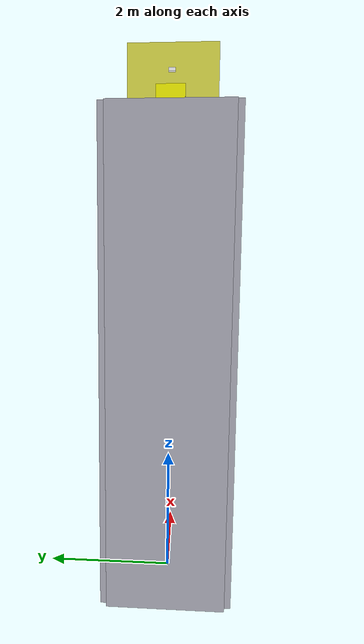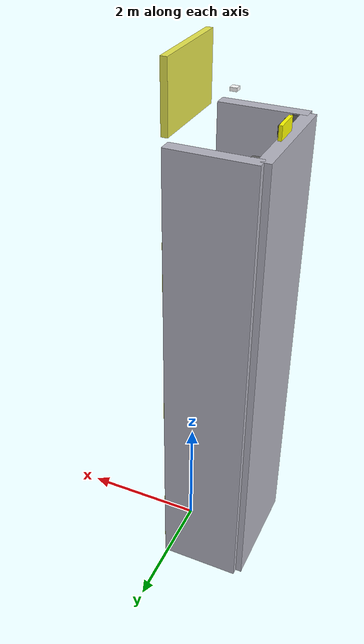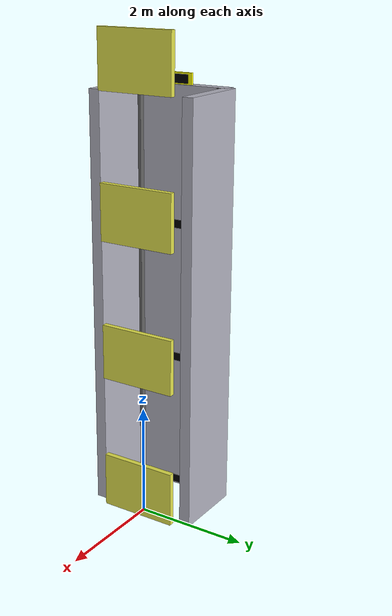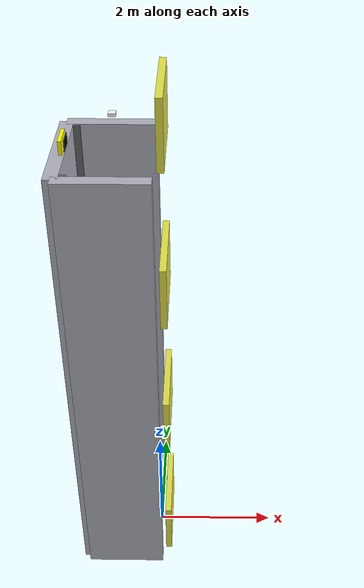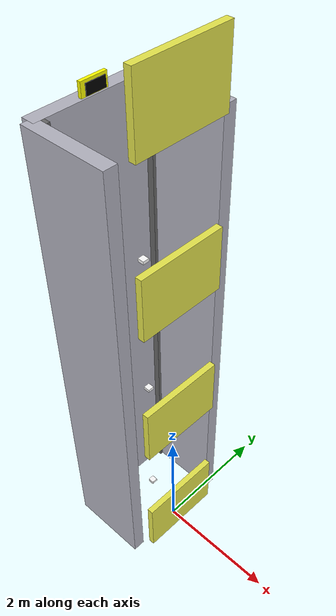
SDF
<?xml version="1.0"?>
<sdf version="1.7">
  <model name="elevator_shaft">
    <static>true</static>
    <pose>0 0 0 0 0 0</pose>

    <!-- Left Rail -->
    <link name="left_rail">
      <pose>-1.1 -0.8 3.75 0 0 0</pose>
      <collision name="left_rail_collision">
        <geometry>
          <box>
            <size>0.1 0.1 7.5</size>
          </box>
        </geometry>
      </collision>
      <visual name="left_rail_visual">
        <geometry>
          <box>
            <size>0.1 0.1 7.5</size>
          </box>
        </geometry>
        <material>
          <ambient>0.3 0.3 0.3 1</ambient>
          <diffuse>0.4 0.4 0.4 1</diffuse>
          <specular>0.7 0.7 0.7 1</specular>
        </material>
      </visual>
    </link>

    <!-- Right Rail -->
    <link name="right_rail">
      <pose>-1.1 0.8 3.75 0 0 0</pose>
      <collision name="right_rail_collision">
        <geometry>
          <box>
            <size>0.1 0.1 7.5</size>
          </box>
        </geometry>
      </collision>
      <visual name="right_rail_visual">
        <geometry>
          <box>
            <size>0.1 0.1 7.5</size>
          </box>
        </geometry>
        <material>
          <ambient>0.3 0.3 0.3 1</ambient>
          <diffuse>0.4 0.4 0.4 1</diffuse>
          <specular>0.7 0.7 0.7 1</specular>
        </material>
      </visual>
    </link>

    <!-- Back Wall -->
    <link name="shaft_back_wall">
      <pose>-1.25 0 3.75 0 0 0</pose>
      <collision name="shaft_back_collision">
        <geometry>
          <box>
            <size>0.2 1.8 7.5</size>
          </box>
        </geometry>
      </collision>
      <visual name="shaft_back_visual">
        <geometry>
          <box>
            <size>0.2 1.8 7.5</size>
          </box>
        </geometry>
        <material>
          <ambient>0.6 0.6 0.65 1</ambient>
          <diffuse>0.7 0.7 0.75 1</diffuse>
          <specular>0.2 0.2 0.2 1</specular>
        </material>
      </visual>
    </link>

    <!-- Left Side Wall -->
    <link name="shaft_left_wall">
      <pose>-0.6 -0.9 3.75 0 0 0</pose>
      <collision name="shaft_left_collision">
        <geometry>
          <box>
            <size>1.3 0.2 7.5</size>
          </box>
        </geometry>
      </collision>
      <visual name="shaft_left_visual">
        <geometry>
          <box>
            <size>1.3 0.2 7.5</size>
          </box>
        </geometry>
        <material>
          <ambient>0.6 0.6 0.65 1</ambient>
          <diffuse>0.7 0.7 0.75 1</diffuse>
          <specular>0.2 0.2 0.2 1</specular>
        </material>
      </visual>
    </link>

    <!-- Right Side Wall -->
    <link name="shaft_right_wall">
      <pose>-0.6 0.9 3.75 0 0 0</pose>
      <collision name="shaft_right_collision">
        <geometry>
          <box>
            <size>1.3 0.2 7.5</size>
          </box>
        </geometry>
      </collision>
      <visual name="shaft_right_visual">
        <geometry>
          <box>
            <size>1.3 0.2 7.5</size>
          </box>
        </geometry>
        <material>
          <ambient>0.6 0.6 0.65 1</ambient>
          <diffuse>0.7 0.7 0.75 1</diffuse>
          <specular>0.2 0.2 0.2 1</specular>
        </material>
      </visual>
    </link>

    <!-- Floor Marker - Ground (0m) -->
    <link name="floor_marker_0">
      <pose>-1.2 0 0.1 0 0 0</pose>
      <visual name="floor_marker_0_visual">
        <geometry>
          <box>
            <size>0.05 0.4 0.2</size>
          </box>
        </geometry>
        <material>
          <ambient>1 1 0 1</ambient>
          <diffuse>1 1 0 1</diffuse>
          <specular>0.5 0.5 0.5 1</specular>
        </material>
      </visual>
    </link>

    <!-- Floor Number 0 -->
    <link name="floor_number_0">
      <pose>-1.15 0 0.1 0 0 0</pose>
      <visual name="floor_number_0_visual">
        <geometry>
          <box>
            <size>0.01 0.3 0.15</size>
          </box>
        </geometry>
        <material>
          <ambient>0 0 0 1</ambient>
          <diffuse>0 0 0 1</diffuse>
          <specular>0.1 0.1 0.1 1</specular>
        </material>
      </visual>
    </link>

    <!-- Floor Marker - Floor 1 (2.5m) -->
    <link name="floor_marker_1">
      <pose>-1.2 0 2.6 0 0 0</pose>
      <visual name="floor_marker_1_visual">
        <geometry>
          <box>
            <size>0.05 0.4 0.2</size>
          </box>
        </geometry>
        <material>
          <ambient>1 1 0 1</ambient>
          <diffuse>1 1 0 1</diffuse>
          <specular>0.5 0.5 0.5 1</specular>
        </material>
      </visual>
    </link>

    <!-- Floor Number 1 -->
    <link name="floor_number_1">
      <pose>-1.15 0 2.6 0 0 0</pose>
      <visual name="floor_number_1_visual">
        <geometry>
          <box>
            <size>0.01 0.3 0.15</size>
          </box>
        </geometry>
        <material>
          <ambient>0 0 0 1</ambient>
          <diffuse>0 0 0 1</diffuse>
          <specular>0.1 0.1 0.1 1</specular>
        </material>
      </visual>
    </link>

    <!-- Floor Marker - Floor 2 (5m) -->
    <link name="floor_marker_2">
      <pose>-1.2 0 5.1 0 0 0</pose>
      <visual name="floor_marker_2_visual">
        <geometry>
          <box>
            <size>0.05 0.4 0.2</size>
          </box>
        </geometry>
        <material>
          <ambient>1 1 0 1</ambient>
          <diffuse>1 1 0 1</diffuse>
          <specular>0.5 0.5 0.5 1</specular>
        </material>
      </visual>
    </link>

    <!-- Floor Number 2 -->
    <link name="floor_number_2">
      <pose>-1.15 0 5.1 0 0 0</pose>
      <visual name="floor_number_2_visual">
        <geometry>
          <box>
            <size>0.01 0.3 0.15</size>
          </box>
        </geometry>
        <material>
          <ambient>0 0 0 1</ambient>
          <diffuse>0 0 0 1</diffuse>
          <specular>0.1 0.1 0.1 1</specular>
        </material>
      </visual>
    </link>

    <!-- Floor Marker - Floor 3 (7.5m) -->
    <link name="floor_marker_3">
      <pose>-1.2 0 7.6 0 0 0</pose>
      <visual name="floor_marker_3_visual">
        <geometry>
          <box>
            <size>0.05 0.4 0.2</size>
          </box>
        </geometry>
        <material>
          <ambient>1 1 0 1</ambient>
          <diffuse>1 1 0 1</diffuse>
          <specular>0.5 0.5 0.5 1</specular>
        </material>
      </visual>
    </link>

    <!-- Floor Number 3 -->
    <link name="floor_number_3">
      <pose>-1.15 0 7.6 0 0 0</pose>
      <visual name="floor_number_3_visual">
        <geometry>
          <box>
            <size>0.01 0.3 0.15</size>
          </box>
        </geometry>
        <material>
          <ambient>0 0 0 1</ambient>
          <diffuse>0 0 0 1</diffuse>
          <specular>0.1 0.1 0.1 1</specular>
        </material>
      </visual>
    </link>

    <!-- Shaft Lighting - Ground Level -->
    <link name="light_0">
      <pose>-0.5 0 0.5 0 0 0</pose>
      <visual name="light_0_visual">
        <geometry>
          <box>
            <size>0.1 0.1 0.05</size>
          </box>
        </geometry>
        <material>
          <ambient>1 1 1 1</ambient>
          <diffuse>1 1 1 1</diffuse>
          <specular>0.8 0.8 0.8 1</specular>
        </material>
      </visual>
    </link>

    <!-- Shaft Lighting - Floor 1 -->
    <link name="light_1">
      <pose>-0.5 0 3.0 0 0 0</pose>
      <visual name="light_1_visual">
        <geometry>
          <box>
            <size>0.1 0.1 0.05</size>
          </box>
        </geometry>
        <material>
          <ambient>1 1 1 1</ambient>
          <diffuse>1 1 1 1</diffuse>
          <specular>0.8 0.8 0.8 1</specular>
        </material>
      </visual>
    </link>

    <!-- Shaft Lighting - Floor 2 -->
    <link name="light_2">
      <pose>-0.5 0 5.5 0 0 0</pose>
      <visual name="light_2_visual">
        <geometry>
          <box>
            <size>0.1 0.1 0.05</size>
          </box>
        </geometry>
        <material>
          <ambient>1 1 1 1</ambient>
          <diffuse>1 1 1 1</diffuse>
          <specular>0.8 0.8 0.8 1</specular>
        </material>
      </visual>
    </link>

    <!-- Shaft Lighting - Floor 3 -->
    <link name="light_3">
      <pose>-0.5 0 8.0 0 0 0</pose>
      <visual name="light_3_visual">
        <geometry>
          <box>
            <size>0.1 0.1 0.05</size>
          </box>
        </geometry>
        <material>
          <ambient>1 1 1 1</ambient>
          <diffuse>1 1 1 1</diffuse>
          <specular>0.8 0.8 0.8 1</specular>
        </material>
      </visual>
    </link>

    <!-- Safety Barrier - Ground Level -->
    <link name="barrier_0">
      <pose>0.15 0 0.5 0 0 0</pose>
      <collision name="barrier_0_collision">
        <geometry>
          <box>
            <size>0.1 1.4 1.0</size>
          </box>
        </geometry>
      </collision>
      <visual name="barrier_0_visual">
        <geometry>
          <box>
            <size>0.1 1.4 1.0</size>
          </box>
        </geometry>
        <material>
          <ambient>0.8 0.8 0.2 1</ambient>
          <diffuse>0.9 0.9 0.3 1</diffuse>
          <specular>0.3 0.3 0.3 1</specular>
        </material>
      </visual>
    </link>

    <!-- Safety Barrier - Floor 1 -->
    <link name="barrier_1">
      <pose>0.15 0 3.0 0 0 0</pose>
      <collision name="barrier_1_collision">
        <geometry>
          <box>
            <size>0.1 1.4 1.0</size>
          </box>
        </geometry>
      </collision>
      <visual name="barrier_1_visual">
        <geometry>
          <box>
            <size>0.1 1.4 1.0</size>
          </box>
        </geometry>
        <material>
          <ambient>0.8 0.8 0.2 1</ambient>
          <diffuse>0.9 0.9 0.3 1</diffuse>
          <specular>0.3 0.3 0.3 1</specular>
        </material>
      </visual>
    </link>

    <!-- Safety Barrier - Floor 2 -->
    <link name="barrier_2">
      <pose>0.15 0 5.5 0 0 0</pose>
      <collision name="barrier_2_collision">
        <geometry>
          <box>
            <size>0.1 1.4 1.0</size>
          </box>
        </geometry>
      </collision>
      <visual name="barrier_2_visual">
        <geometry>
          <box>
            <size>0.1 1.4 1.0</size>
          </box>
        </geometry>
        <material>
          <ambient>0.8 0.8 0.2 1</ambient>
          <diffuse>0.9 0.9 0.3 1</diffuse>
          <specular>0.3 0.3 0.3 1</specular>
        </material>
      </visual>
    </link>

    <!-- Safety Barrier - Floor 3 -->
    <link name="barrier_3">
      <pose>0.15 0 8.0 0 0 0</pose>
      <collision name="barrier_3_collision">
        <geometry>
          <box>
            <size>0.1 1.4 1.0</size>
          </box>
        </geometry>
      </collision>
      <visual name="barrier_3_visual">
        <geometry>
          <box>
            <size>0.1 1.4 1.0</size>
          </box>
        </geometry>
        <material>
          <ambient>0.8 0.8 0.2 1</ambient>
          <diffuse>0.9 0.9 0.3 1</diffuse>
          <specular>0.3 0.3 0.3 1</specular>
        </material>
      </visual>
    </link>

    <!-- Light Sources -->
    <light name="shaft_light_0" type="point">
      <pose>-0.5 0 0.5 0 0 0</pose>
      <diffuse>0.8 0.8 0.8 1</diffuse>
      <specular>0.2 0.2 0.2 1</specular>
      <attenuation>
        <range>3.0</range>
        <constant>0.1</constant>
        <linear>0.1</linear>
        <quadratic>0.05</quadratic>
      </attenuation>
    </light>

    <light name="shaft_light_1" type="point">
      <pose>-0.5 0 3.0 0 0 0</pose>
      <diffuse>0.8 0.8 0.8 1</diffuse>
      <specular>0.2 0.2 0.2 1</specular>
      <attenuation>
        <range>3.0</range>
        <constant>0.1</constant>
        <linear>0.1</linear>
        <quadratic>0.05</quadratic>
      </attenuation>
    </light>

    <light name="shaft_light_2" type="point">
      <pose>-0.5 0 5.5 0 0 0</pose>
      <diffuse>0.8 0.8 0.8 1</diffuse>
      <specular>0.2 0.2 0.2 1</specular>
      <attenuation>
        <range>3.0</range>
        <constant>0.1</constant>
        <linear>0.1</linear>
        <quadratic>0.05</quadratic>
      </attenuation>
    </light>

    <light name="shaft_light_3" type="point">
      <pose>-0.5 0 8.0 0 0 0</pose>
      <diffuse>0.8 0.8 0.8 1</diffuse>
      <specular>0.2 0.2 0.2 1</specular>
      <attenuation>
        <range>3.0</range>
        <constant>0.1</constant>
        <linear>0.1</linear>
        <quadratic>0.05</quadratic>
      </attenuation>
    </light>

  </model>
</sdf>
